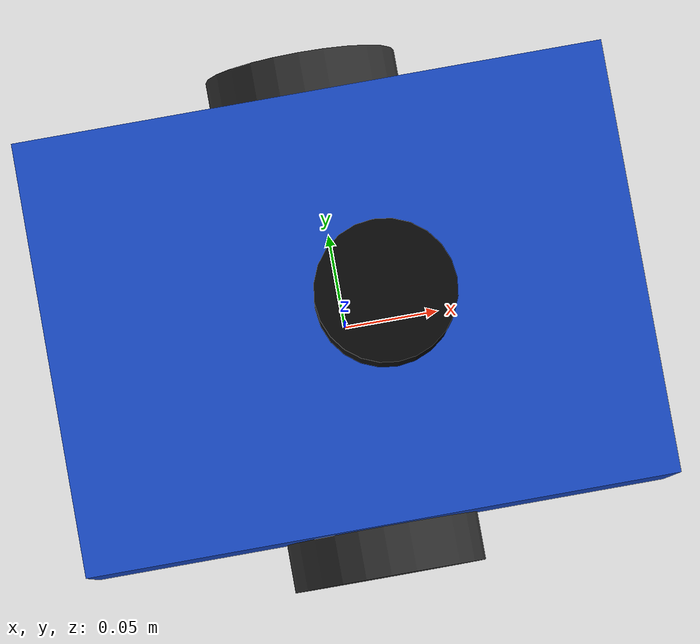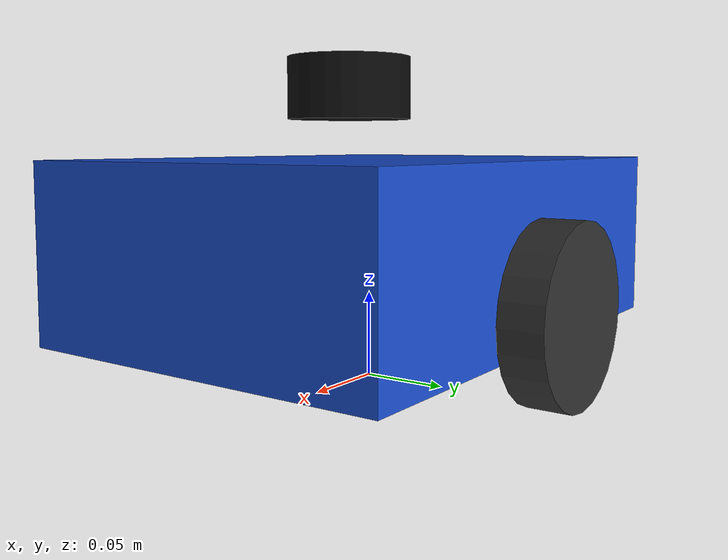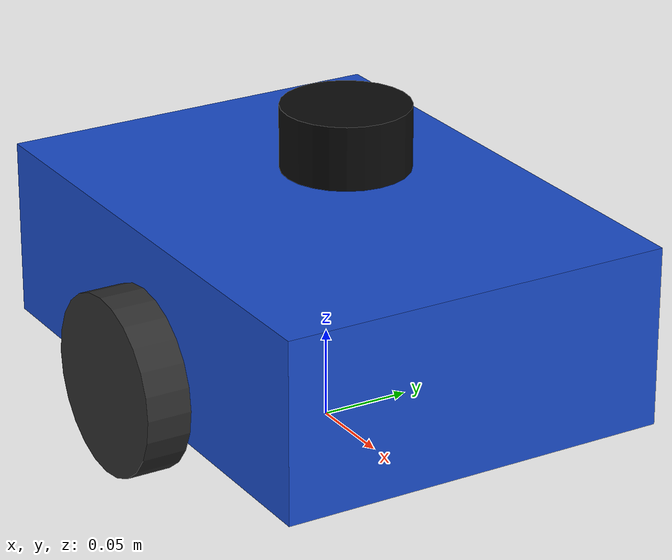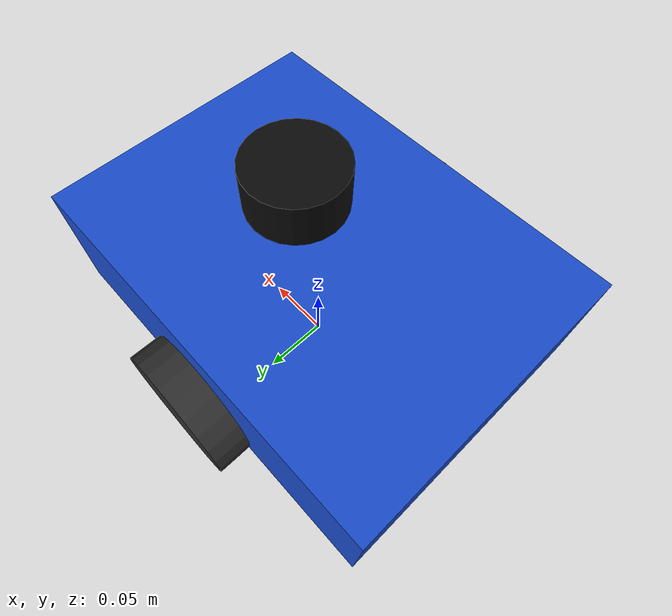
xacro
<?xml version="1.0"?>
<robot name="mobile_robot" xmlns:xacro="http://www.ros.org/wiki/xacro">

  <material name="blue">
    <color rgba="0.1 0.3 0.8 1.0"/>
  </material>
  <material name="dark_grey">
    <color rgba="0.18 0.18 0.18 1.0"/>
  </material>
  <material name="black">
    <color rgba="0.04 0.04 0.04 1.0"/>
  </material>

  <link name="base_footprint"/>

  <link name="base_link">
    <visual>
      <origin xyz="0 0 0.08" rpy="0 0 0"/>
      <geometry><box size="0.30 0.22 0.10"/></geometry>
      <material name="blue"/>
    </visual>
    <collision>
      <origin xyz="0 0 0.08" rpy="0 0 0"/>
      <geometry><box size="0.30 0.22 0.10"/></geometry>
    </collision>
    <inertial>
      <origin xyz="0 0 0.08" rpy="0 0 0"/>
      <mass value="3.0"/>
      <inertia ixx="0.013" ixy="0.0" ixz="0.0"
               iyy="0.025" iyz="0.0" izz="0.035"/>
    </inertial>
  </link>

  <joint name="base_footprint_joint" type="fixed">
    <parent link="base_footprint"/>
    <child link="base_link"/>
    <origin xyz="0 0 0" rpy="0 0 0"/>
  </joint>

  <xacro:macro name="wheel" params="name y">
    <link name="${name}">
      <visual>
        <origin xyz="0 0 0" rpy="1.57079632679 0 0"/>
        <geometry><cylinder radius="0.05" length="0.025"/></geometry>
        <material name="dark_grey"/>
      </visual>
      <collision>
        <origin xyz="0 0 0" rpy="1.57079632679 0 0"/>
        <geometry><cylinder radius="0.05" length="0.025"/></geometry>
      </collision>
      <inertial>
        <mass value="0.25"/>
        <inertia ixx="0.0004" ixy="0.0" ixz="0.0"
                 iyy="0.0004" iyz="0.0" izz="0.0004"/>
      </inertial>
    </link>
    <joint name="${name}_joint" type="continuous">
      <parent link="base_link"/>
      <child link="${name}"/>
      <origin xyz="0 ${y} 0.05" rpy="0 0 0"/>
      <axis xyz="0 1 0"/>
    </joint>
  </xacro:macro>

  <xacro:wheel name="left_wheel" y="0.1225"/>
  <xacro:wheel name="right_wheel" y="-0.1225"/>

  <link name="caster_wheel">
    <visual><geometry><sphere radius="0.025"/></geometry><material name="black"/></visual>
    <collision><geometry><sphere radius="0.025"/></geometry></collision>
    <inertial>
      <mass value="0.05"/>
      <inertia ixx="0.00002" ixy="0.0" ixz="0.0"
               iyy="0.00002" iyz="0.0" izz="0.00002"/>
    </inertial>
  </link>
  <joint name="caster_wheel_joint" type="fixed">
    <parent link="base_link"/>
    <child link="caster_wheel"/>
    <origin xyz="-0.11 0 0.025" rpy="0 0 0"/>
  </joint>

  <!-- 2D LiDAR frame and Gazebo Sim sensor -->
  <link name="lidar_link">
    <visual>
      <geometry><cylinder radius="0.035" length="0.035"/></geometry>
      <material name="black"/>
    </visual>
    <collision>
      <geometry><cylinder radius="0.035" length="0.035"/></geometry>
    </collision>
    <inertial>
      <mass value="0.12"/>
      <inertia ixx="0.0001" ixy="0.0" ixz="0.0"
               iyy="0.0001" iyz="0.0" izz="0.0001"/>
    </inertial>
  </link>
  <joint name="lidar_joint" type="fixed">
    <parent link="base_link"/>
    <child link="lidar_link"/>
    <origin xyz="0.02 0 0.17" rpy="0 0 0"/>
  </joint>

  <gazebo reference="lidar_link">
    <sensor name="front_lidar" type="gpu_lidar">
      <topic>/scan</topic>
      <update_rate>10</update_rate>
      <lidar>
        <scan>
          <horizontal>
            <samples>360</samples>
            <resolution>1</resolution>
            <min_angle>-3.14159</min_angle>
            <max_angle>3.14159</max_angle>
          </horizontal>
        </scan>
        <range>
          <min>0.12</min>
          <max>8.0</max>
          <resolution>0.01</resolution>
        </range>
      </lidar>
      <always_on>true</always_on>
      <visualize>true</visualize>
    </sensor>
  </gazebo>

  <!-- Gazebo Sim Harmonic differential-drive controller -->
  <gazebo>
    <plugin filename="gz-sim-diff-drive-system" name="gz::sim::systems::DiffDrive">
      <left_joint>left_wheel_joint</left_joint>
      <right_joint>right_wheel_joint</right_joint>
      <wheel_separation>0.245</wheel_separation>
      <wheel_radius>0.05</wheel_radius>
      <topic>/cmd_vel</topic>
      <odom_topic>/model/mobile_robot/odometry</odom_topic>
      <frame_id>odom</frame_id>
      <child_frame_id>base_footprint</child_frame_id>
      <odom_publish_frequency>30</odom_publish_frequency>
    </plugin>
  </gazebo>

</robot>
